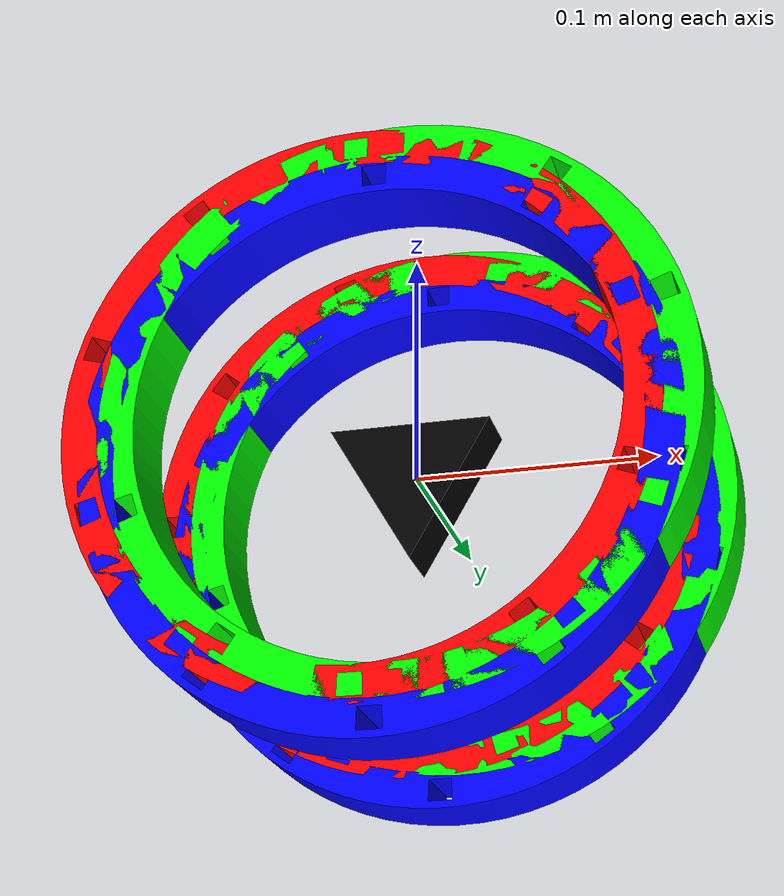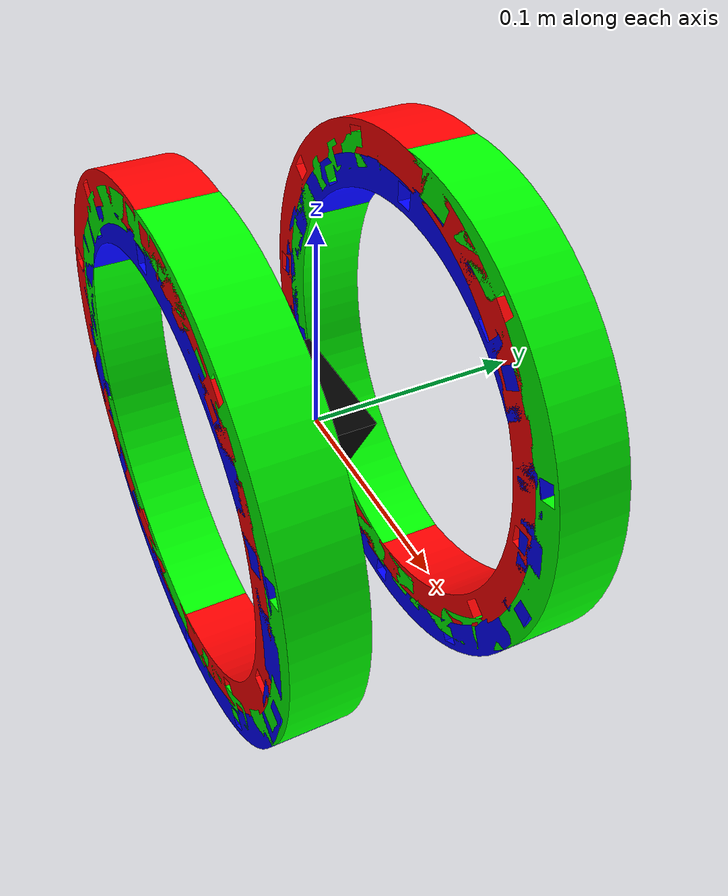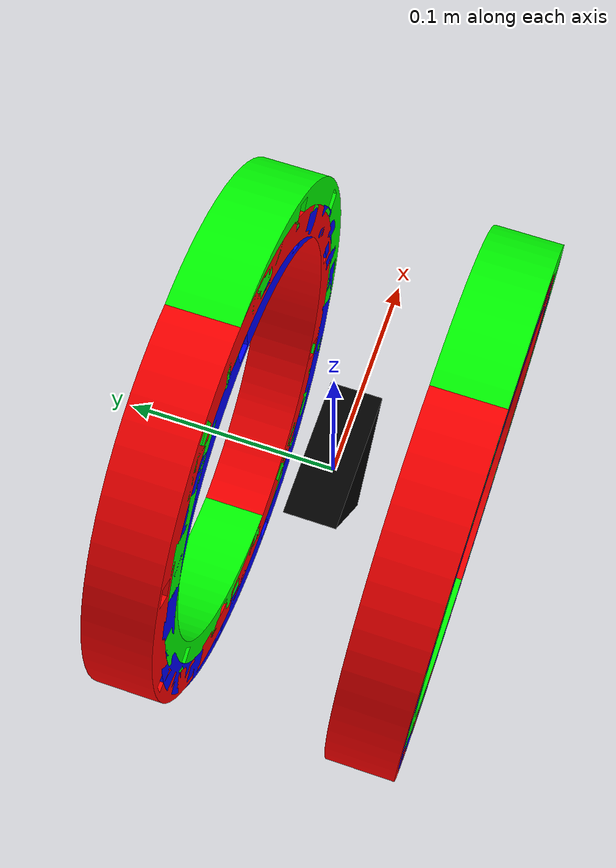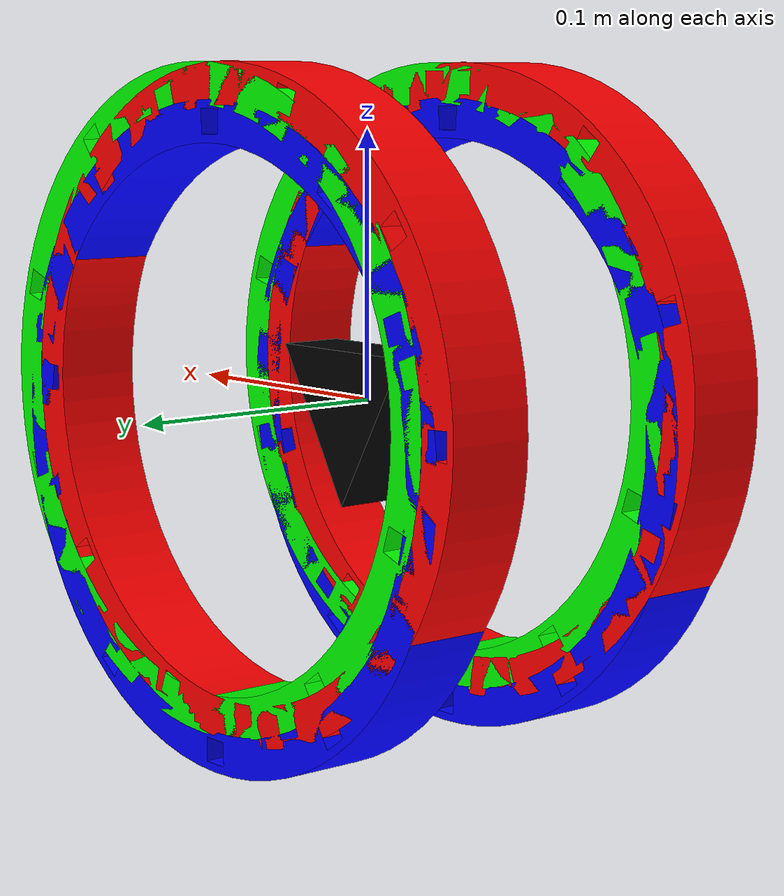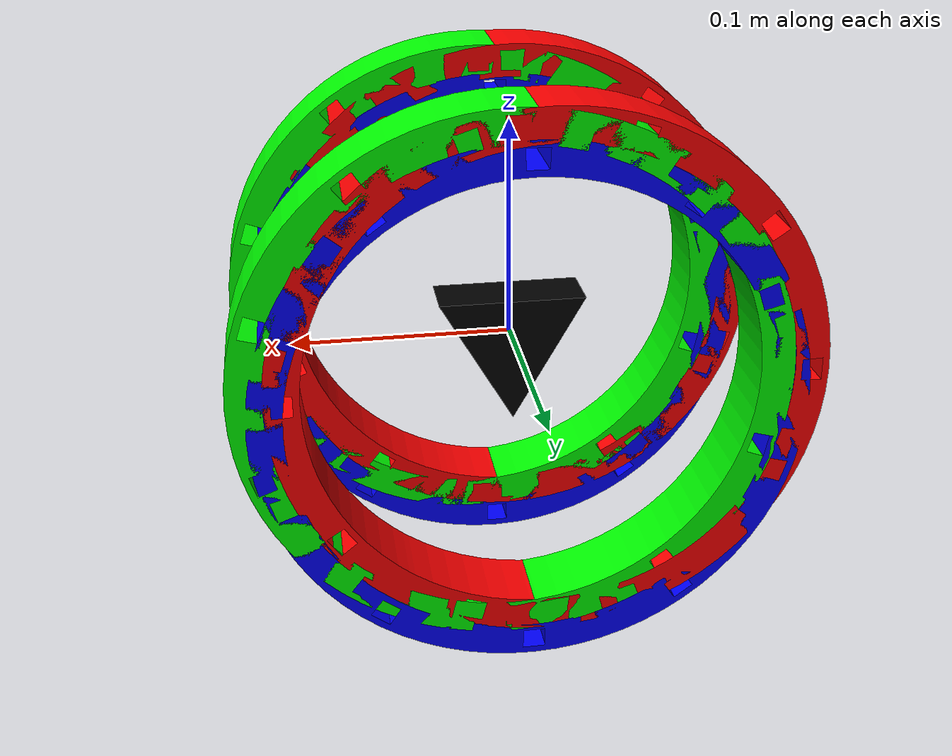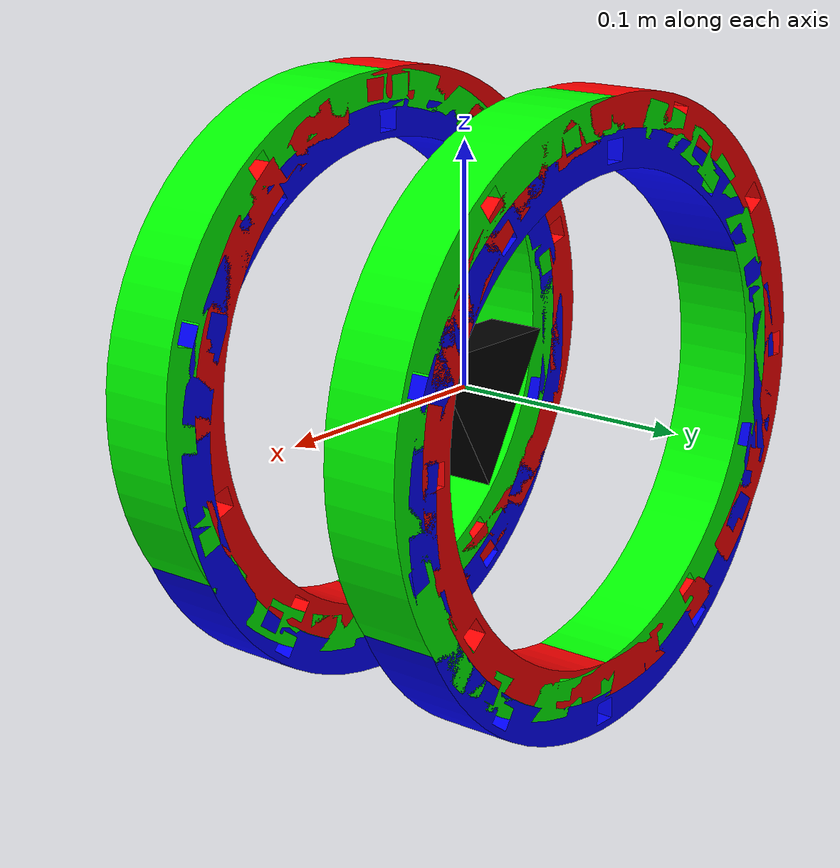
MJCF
<?xml version="1.0" ?>
<!-- Generated using onshape-to-robot -->
<!-- Onshape https://cad.onshape.com/documents/6ea4df2c2feb9d034b7d17e7/w/f7f81d80de76a46836fa4b60/e/3381f4ecc1cbedb8efeb0420 -->
<mujoco model="my-robot">
  <compiler angle="radian" meshdir="assets" autolimits="true"/>
  <default>
    <default class="my-robot">
      <joint frictionloss="0.1" armature="0.05"/>
      <default class="visual">
        <geom type="mesh" contype="0" conaffinity="0" group="2"/>
      </default>
      <default class="collision">
    <geom group="3" contype="0" conaffinity="1"/>
      </default>
    </default>
  </default>
  <worldbody>
    <!-- Link refrence -->
    <body name="refrence" pos="0 0 0" quat="1 0 0 0" childclass="my-robot">
      <freejoint name="refrence_freejoint"/>
      <inertial pos="0 0 0" mass="4.62243156" fullinertia="0.029 0.029 0.043 7.682e-5 2.262e-7 -5.775e-7"/>
      <!-- Part refrence -->
      <geom type="mesh" class="visual" pos="0.0489164 -0.0125 0.0282419" quat="1 0 0 0" mesh="refrence" material="refrence_material"/>
      <geom type="mesh" class="collision" pos="0.0489164 -0.0125 0.0282419" quat="1 0 0 0" mesh="refrence" material="refrence_material"/>
      <!-- Frame imu3 -->
      <site group="3" name="imu3" pos="-0.0025 0.0361725 -0.0862338" quat="0.707107 0 0 0.707107"/>
      <!-- Frame imu1 -->
      <site group="3" name="imu1" pos="-0.0734307 0.0361725 0.045282" quat="0.353553 0.612372 0.612372 0.353553"/>
      <!-- Frame imu2 -->
      <site group="3" name="imu2" pos="0.0759307 0.0361725 0.0409518" quat="0.353553 -0.612372 -0.612372 0.353553"/>
      <!-- Link fake_tread -->
      <body name="fake_tread" pos="-0.0075884 -0.039 0.00438116" quat="0.707107 -0.707107 0 0">
        <!-- Joint from refrence to fake_tread -->
        <joint axis="0 0 1" name="rolly1_L" type="hinge"/>
        <inertial pos="0 0 0" mass="1e-09" fullinertia="1e-09 1e-09 1e-09 0 0 0"/>
        <!-- Part fake_tread -->
        <geom type="mesh" class="visual" pos="0.0564882 -0.0238704 0" quat="0.707107 0.707107 -0 -0" mesh="fake_tread" material="fake_tread_material"/>
        <geom type="mesh" class="collision" pos="0.0564882 -0.0238704 0" quat="0.707107 0.707107 -0 -0" mesh="fake_tread" material="fake_tread_material"/>
      </body>
      <!-- Link fake_tread_2 -->
      <body name="fake_tread_2" pos="-0.00757175 0.039 0.00437155" quat="0.5 0.5 -0.5 0.5">
        <!-- Joint from refrence to fake_tread_2 -->
        <joint axis="0 0 1" name="rolly1_R" type="hinge"/>
        <inertial pos="0 0 0" mass="1e-09" fullinertia="1e-09 1e-09 1e-09 0 0 0"/>
        <!-- Part fake_tread_2 -->
        <geom type="mesh" class="visual" pos="0.0564882 0.0238704 -0.032" quat="0.707107 -0.707107 0 0" mesh="fake_tread" material="fake_tread_material"/>
        <geom type="mesh" class="collision" pos="0.0564882 0.0238704 -0.032" quat="0.707107 -0.707107 0 0" mesh="fake_tread" material="fake_tread_material"/>
      </body>
      <!-- Link fake_tread_3 -->
      <body name="fake_tread_3" pos="0.00757175 -0.039 0.00437155" quat="0.707107 -0.707107 0 0">
        <!-- Joint from refrence to fake_tread_3 -->
        <joint axis="0 0 1" name="rolly2_L" type="hinge"/>
        <inertial pos="0 0 0" mass="1e-09" fullinertia="1e-09 1e-09 1e-09 0 0 0"/>
        <!-- Part fake_tread_3 -->
        <geom type="mesh" class="visual" pos="0.0564882 0.0238704 -0.032" quat="0.707107 -0.707107 0 0" mesh="fake_tread" material="fake_tread_material1"/>
        <geom type="mesh" class="collision" pos="0.0564882 0.0238704 -0.032" quat="0.707107 -0.707107 0 0" mesh="fake_tread" material="fake_tread_material1"/>
      </body>
      <!-- Link fake_tread_4 -->
      <body name="fake_tread_4" pos="0.00757175 0.039 0.00437155" quat="0.707107 0.707107 -0 -0">
        <!-- Joint from refrence to fake_tread_4 -->
        <joint axis="0 0 1" name="rolly2_R" type="hinge"/>
        <inertial pos="0 0 0" mass="1e-09" fullinertia="1e-09 1e-09 1e-09 0 0 0"/>
        <!-- Part fake_tread_4 -->
        <geom type="mesh" class="visual" pos="0.0564882 -0.0238704 0" quat="0.707107 0.707107 -0 -0" mesh="fake_tread" material="fake_tread_material1"/>
        <geom type="mesh" class="collision" pos="0.0564882 -0.0238704 0" quat="0.707107 0.707107 -0 -0" mesh="fake_tread" material="fake_tread_material1"/>
      </body>
      <!-- Link fake_tread_5 -->
      <body name="fake_tread_5" pos="0 -0.039 -0.0087431" quat="0.707107 -0.707107 0 0">
        <!-- Joint from refrence to fake_tread_5 -->
        <joint axis="0 0 1" name="rolly3_L" type="hinge"/>
        <inertial pos="0 0 0" mass="1e-09" fullinertia="1e-09 1e-09 1e-09 0 0 0"/>
        <!-- Part fake_tread_5 -->
        <geom type="mesh" class="visual" pos="0.0564882 0.0238704 -0.032" quat="0.707107 -0.707107 0 0" mesh="fake_tread" material="fake_tread_material2"/>
        <geom type="mesh" class="collision" pos="0.0564882 0.0238704 -0.032" quat="0.707107 -0.707107 0 0" mesh="fake_tread" material="fake_tread_material2"/>
      </body>
      <!-- Link fake_tread_6 -->
      <body name="fake_tread_6" pos="-6.93889e-18 0.039 -0.0087431" quat="0.707107 0.707107 -1.11022e-16 0">
        <!-- Joint from refrence to fake_tread_6 -->
        <joint axis="0 0 1" name="rolly3_R" type="hinge"/>
        <inertial pos="0 0 0" mass="1e-09" fullinertia="1e-09 1e-09 1e-09 0 0 0"/>
        <!-- Part fake_tread_6 -->
        <geom type="mesh" class="visual" pos="0.0564882 -0.0238704 0" quat="0.707107 0.707107 -0 -0" mesh="fake_tread" material="fake_tread_material2"/>
        <geom type="mesh" class="collision" pos="0.0564882 -0.0238704 0" quat="0.707107 0.707107 -0 -0" mesh="fake_tread" material="fake_tread_material2"/>
      </body>
    </body>
  </worldbody>
  <asset>
    <mesh file="refrence.stl"/>
    <mesh file="fake_tread.stl"/>
    <material name="refrence_material" rgba="0 0 0 1"/>
    <material name="fake_tread_material" rgba="1 0 0 1"/>
    <material name="fake_tread_material1" rgba="0 1 0 1"/>
    <material name="fake_tread_material2" rgba="0 0 1 1"/>
  </asset>
  <actuator>

    <velocity class="my-robot" name="rolly1_R" joint="rolly1_R" forcerange="-0.25 0.25" forcelimited="true" kv="1" gear="4.8 0 0 0 0 0"/>
    <velocity class="my-robot" name="rolly1_L" joint="rolly1_L" forcerange="-0.25 0.25" forcelimited="true" kv="1" gear="4.8 0 0 0 0 0"/>
    <velocity class="my-robot" name="rolly2_L" joint="rolly2_L" forcerange="-0.25 0.25" forcelimited="true" kv="1" gear="4.8 0 0 0 0 0"/>
    <velocity class="my-robot" name="rolly2_R" joint="rolly2_R" forcerange="-0.25 0.25" forcelimited="true" kv="1" gear="4.8 0 0 0 0 0"/>
    <velocity class="my-robot" name="rolly3_L" joint="rolly3_L" forcerange="-0.25 0.25" forcelimited="true" kv="1" gear="4.8 0 0 0 0 0"/>
    <velocity class="my-robot" name="rolly3_R" joint="rolly3_R" forcerange="-0.25 0.25" forcelimited="true" kv="1" gear="4.8 0 0 0 0 0"/>
  </actuator>

  <sensor>
    <accelerometer name="imu1_accel" site="imu1"/>
    <accelerometer name="imu2_accel" site="imu2"/>
    <accelerometer name="imu3_accel" site="imu3"/>
    <gyro name="imu1_gyro" site="imu1"/>
    <gyro name="imu2_gyro" site="imu2"/>
    <gyro name="imu3_gyro" site="imu3"/>

  </sensor>

  <equality/>

</mujoco>
